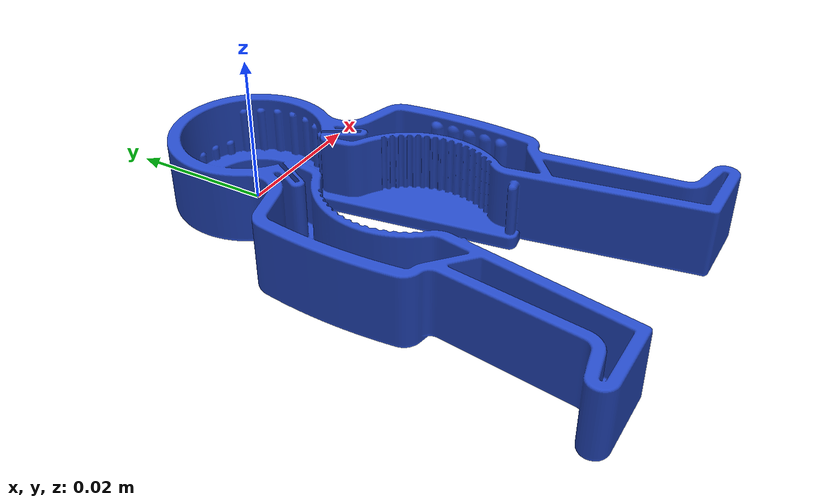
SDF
<?xml version="1.0" ?>
<sdf version="1.5">
  <model name="unob_3">
    <static>true</static>
    <link name="unob_3_link">

      <collision name="collision">
        <geometry>
          <mesh>
            <uri>model://unob_3/meshes/unob_3.dae</uri>
            <scale>0.7 0.7 0.7</scale>
          </mesh>
        </geometry>
      </collision>

      <visual name="visual">
        <geometry>
          <mesh>
            <uri>model://unob_3/meshes/unob_3.dae</uri>
            <scale>0.7 0.7 0.7</scale>
          </mesh>
        </geometry>
        <material>
          <script>
            <uri>file://media/materials/scripts/gazebo.material</uri>
            <name>Gazebo/Blue</name>
          </script>
        </material>
      </visual>
    </link>
  </model>
</sdf>
